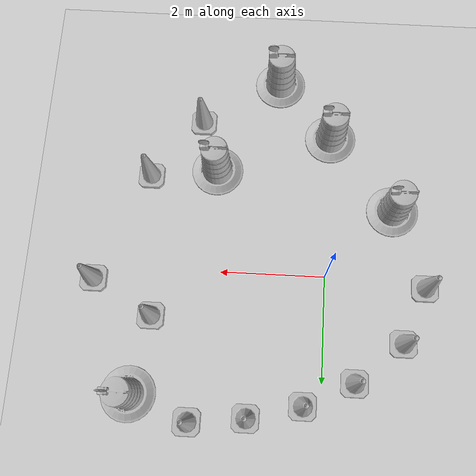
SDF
<sdf version="1.7">
 <world name="default">
  <light name="sun" type="directional">
   <pose>0 0 10 0 -0 0</pose>
   <diffuse>0.8 0.8 0.8 1</diffuse>
   <specular>0.2 0.2 0.2 1</specular>
   <attenuation>
    <range>1000</range>
    <constant>0.9</constant>
    <linear>0.01</linear>
    <quadratic>0.001</quadratic>
   </attenuation>
   <direction>-0.5 0.1 -0.9</direction>
   <spot><inner_angle>0</inner_angle><outer_angle>0</outer_angle><falloff>0</falloff></spot>
  </light>
  <model name="ground_plane">
   <static>1</static>
   <link name="link">
    <collision name="collision">
     <geometry><plane><normal>0 0 1</normal><size>100 100</size></plane></geometry>
     <surface><friction><ode><mu>100</mu><mu2>50</mu2></ode></friction></surface>
    </collision>
    <visual name="visual">
     <cast_shadows>0</cast_shadows>
     <geometry><plane><normal>0 0 1</normal><size>100 100</size></plane></geometry>
     <material>
      <script><uri>file://media/materials/scripts/gazebo.material</uri><name>Gazebo/Grey</name></script>
     </material>
    </visual>
   </link>
  </model>
  <gravity>0 0 -9.8</gravity>
  <magnetic_field>6e-06 2.3e-05 -4.2e-05</magnetic_field>
  <atmosphere type="adiabatic"/>
  <physics type="ode">
   <max_step_size>0.001</max_step_size>
   <real_time_factor>1</real_time_factor>
   <real_time_update_rate>1000</real_time_update_rate>
  </physics>
  <scene><ambient>0.4 0.4 0.4 1</ambient><background>0.7 0.7 0.7 1</background><shadows>1</shadows></scene>
  <audio><device>default</device></audio>
  <spherical_coordinates>
   <surface_model>EARTH_WGS84</surface_model>
   <latitude_deg>0</latitude_deg>
   <longitude_deg>0</longitude_deg>
   <elevation>0</elevation>
   <heading_deg>0</heading_deg>
  </spherical_coordinates>
  <model name="Construction Cone">
   <link name="link">
    <collision name="collision">
     <geometry>
      <mesh><scale>10 10 10</scale><uri>model://construction_cone/meshes/construction_cone.dae</uri></mesh>
     </geometry>
    </collision>
    <visual name="visual">
     <geometry>
      <mesh><scale>10 10 10</scale><uri>model://construction_cone/meshes/construction_cone.dae</uri></mesh>
     </geometry>
    </visual>
    <inertial>
     <inertia><ixx>1</ixx><ixy>0</ixy><ixz>0</ixz><iyy>1</iyy><iyz>0</iyz><izz>1</izz></inertia>
     <mass>1</mass>
    </inertial>
   </link>
   <pose>-0.598201 1.95775 -0 0 -1e-06 0</pose>
  </model>
  <model name="Construction Cone_0">
   <link name="link">
    <collision name="collision">
     <geometry>
      <mesh><scale>10 10 10</scale><uri>model://construction_cone/meshes/construction_cone.dae</uri></mesh>
     </geometry>
    </collision>
    <visual name="visual">
     <geometry>
      <mesh><scale>10 10 10</scale><uri>model://construction_cone/meshes/construction_cone.dae</uri></mesh>
     </geometry>
    </visual>
    <inertial>
     <inertia><ixx>1</ixx><ixy>0</ixy><ixz>0</ixz><iyy>1</iyy><iyz>0</iyz><izz>1</izz></inertia>
     <mass>1</mass>
    </inertial>
   </link>
   <pose>0.338828 2.41075 -0 0 -0 0</pose>
  </model>
  <model name="Construction Cone_1">
   <link name="link">
    <collision name="collision">
     <geometry>
      <mesh><scale>10 10 10</scale><uri>model://construction_cone/meshes/construction_cone.dae</uri></mesh>
     </geometry>
    </collision>
    <visual name="visual">
     <geometry>
      <mesh><scale>10 10 10</scale><uri>model://construction_cone/meshes/construction_cone.dae</uri></mesh>
     </geometry>
    </visual>
    <inertial>
     <inertia><ixx>1</ixx><ixy>0</ixy><ixz>0</ixz><iyy>1</iyy><iyz>0</iyz><izz>1</izz></inertia>
     <mass>1</mass>
    </inertial>
   </link>
   <pose>-1.50041 1.19523 -0 0 -1e-06 0</pose>
  </model>
  <model name="Construction Cone_2">
   <link name="link">
    <collision name="collision">
     <geometry>
      <mesh><scale>10 10 10</scale><uri>model://construction_cone/meshes/construction_cone.dae</uri></mesh>
     </geometry>
    </collision>
    <visual name="visual">
     <geometry>
      <mesh><scale>10 10 10</scale><uri>model://construction_cone/meshes/construction_cone.dae</uri></mesh>
     </geometry>
    </visual>
    <inertial>
     <inertia><ixx>1</ixx><ixy>0</ixy><ixz>0</ixz><iyy>1</iyy><iyz>0</iyz><izz>1</izz></inertia>
     <mass>1</mass>
    </inertial>
   </link>
   <pose>-1.92128 0.129513 -0 1e-06 -0 0</pose>
  </model>
  <model name="Construction Barrel">
   <link name="link">
    <inertial>
     <pose>0 0 0.4 0 -0 0</pose>
     <mass>500</mass>
     <inertia><ixx>51.2096</ixx><iyy>51.2096</iyy><izz>25</izz><ixy>0</ixy><ixz>0</ixz><iyz>0</iyz></inertia>
    </inertial>
    <collision name="collision">
     <geometry><mesh><uri>model://construction_barrel/meshes/construction_barrel.dae</uri></mesh></geometry>
    </collision>
    <visual name="visual">
     <geometry><mesh><uri>model://construction_barrel/meshes/construction_barrel.dae</uri></mesh></geometry>
    </visual>
   </link>
   <pose>-1.30532 -1.38538 -0 0 -0 -2e-05</pose>
  </model>
  <model name="Construction Barrel_0">
   <link name="link">
    <inertial>
     <pose>0 0 0.4 0 -0 0</pose>
     <mass>500</mass>
     <inertia><ixx>51.2096</ixx><iyy>51.2096</iyy><izz>25</izz><ixy>0</ixy><ixz>0</ixz><iyz>0</iyz></inertia>
    </inertial>
    <collision name="collision">
     <geometry><mesh><uri>model://construction_barrel/meshes/construction_barrel.dae</uri></mesh></geometry>
    </collision>
    <visual name="visual">
     <geometry><mesh><uri>model://construction_barrel/meshes/construction_barrel.dae</uri></mesh></geometry>
    </visual>
   </link>
   <pose>-0.050528 -2.86943 0 0 1e-06 -1.9e-05</pose>
  </model>
  <model name="Construction Barrel_1">
   <link name="link">
    <inertial>
     <pose>0 0 0.4 0 -0 0</pose>
     <mass>500</mass>
     <inertia><ixx>51.2096</ixx><iyy>51.2096</iyy><izz>25</izz><ixy>0</ixy><ixz>0</ixz><iyz>0</iyz></inertia>
    </inertial>
    <collision name="collision">
     <geometry><mesh><uri>model://construction_barrel/meshes/construction_barrel.dae</uri></mesh></geometry>
    </collision>
    <visual name="visual">
     <geometry><mesh><uri>model://construction_barrel/meshes/construction_barrel.dae</uri></mesh></geometry>
    </visual>
   </link>
   <pose>1.0123 -4.04089 -1e-06 -1e-06 -0 -1.8e-05</pose>
  </model>
  <model name="Construction Cone_3">
   <link name="link">
    <collision name="collision">
     <geometry>
      <mesh><scale>10 10 10</scale><uri>model://construction_cone/meshes/construction_cone.dae</uri></mesh>
     </geometry>
    </collision>
    <visual name="visual">
     <geometry>
      <mesh><scale>10 10 10</scale><uri>model://construction_cone/meshes/construction_cone.dae</uri></mesh>
     </geometry>
    </visual>
    <inertial>
     <inertia><ixx>1</ixx><ixy>0</ixy><ixz>0</ixz><iyy>1</iyy><iyz>0</iyz><izz>1</izz></inertia>
     <mass>1</mass>
    </inertial>
   </link>
   <pose>1.36357 2.66974 -0 0 -1e-06 0</pose>
  </model>
  <model name="Construction Cone_4">
   <link name="link">
    <collision name="collision">
     <geometry>
      <mesh><scale>10 10 10</scale><uri>model://construction_cone/meshes/construction_cone.dae</uri></mesh>
     </geometry>
    </collision>
    <visual name="visual">
     <geometry>
      <mesh><scale>10 10 10</scale><uri>model://construction_cone/meshes/construction_cone.dae</uri></mesh>
     </geometry>
    </visual>
    <inertial>
     <inertia><ixx>1</ixx><ixy>0</ixy><ixz>0</ixz><iyy>1</iyy><iyz>0</iyz><izz>1</izz></inertia>
     <mass>1</mass>
    </inertial>
   </link>
   <pose>2.42055 2.78492 -0 0 -1e-06 0</pose>
  </model>
  <model name="Construction Cone_5">
   <link name="link">
    <collision name="collision">
     <geometry>
      <mesh><scale>10 10 10</scale><uri>model://construction_cone/meshes/construction_cone.dae</uri></mesh>
     </geometry>
    </collision>
    <visual name="visual">
     <geometry>
      <mesh><scale>10 10 10</scale><uri>model://construction_cone/meshes/construction_cone.dae</uri></mesh>
     </geometry>
    </visual>
    <inertial>
     <inertia><ixx>1</ixx><ixy>0</ixy><ixz>0</ixz><iyy>1</iyy><iyz>0</iyz><izz>1</izz></inertia>
     <mass>1</mass>
    </inertial>
   </link>
   <pose>2.53627 -3.09604 0 -0 -0 -0</pose>
  </model>
  <model name="Construction Barrel_2">
   <link name="link">
    <inertial>
     <pose>0 0 0.4 0 -0 0</pose>
     <mass>500</mass>
     <inertia><ixx>51.2096</ixx><iyy>51.2096</iyy><izz>25</izz><ixy>0</ixy><ixz>0</ixz><iyz>0</iyz></inertia>
    </inertial>
    <collision name="collision">
     <geometry><mesh><uri>model://construction_barrel/meshes/construction_barrel.dae</uri></mesh></geometry>
    </collision>
    <visual name="visual">
     <geometry><mesh><uri>model://construction_barrel/meshes/construction_barrel.dae</uri></mesh></geometry>
    </visual>
   </link>
   <pose>2.1924 -2.06818 -0 0 0 -1e-05</pose>
  </model>
  <model name="Construction Barrel_3">
   <link name="link">
    <inertial>
     <pose>0 0 0.4 0 -0 0</pose>
     <mass>500</mass>
     <inertia><ixx>51.2096</ixx><iyy>51.2096</iyy><izz>25</izz><ixy>0</ixy><ixz>0</ixz><iyz>0</iyz></inertia>
    </inertial>
    <collision name="collision">
     <geometry><mesh><uri>model://construction_barrel/meshes/construction_barrel.dae</uri></mesh></geometry>
    </collision>
    <visual name="visual">
     <geometry><mesh><uri>model://construction_barrel/meshes/construction_barrel.dae</uri></mesh></geometry>
    </visual>
   </link>
   <pose>3.52966 2.34883 0 1e-06 1e-06 -9e-06</pose>
  </model>
  <model name="Construction Cone_6">
   <link name="link">
    <collision name="collision">
     <geometry>
      <mesh><scale>10 10 10</scale><uri>model://construction_cone/meshes/construction_cone.dae</uri></mesh>
     </geometry>
    </collision>
    <visual name="visual">
     <geometry>
      <mesh><scale>10 10 10</scale><uri>model://construction_cone/meshes/construction_cone.dae</uri></mesh>
     </geometry>
    </visual>
    <inertial>
     <inertia><ixx>1</ixx><ixy>0</ixy><ixz>0</ixz><iyy>1</iyy><iyz>0</iyz><izz>1</izz></inertia>
     <mass>1</mass>
    </inertial>
   </link>
   <pose>3.24932 0.903737 -0 0 -0 0</pose>
  </model>
  <model name="Construction Cone_7">
   <link name="link">
    <collision name="collision">
     <geometry>
      <mesh><scale>10 10 10</scale><uri>model://construction_cone/meshes/construction_cone.dae</uri></mesh>
     </geometry>
    </collision>
    <visual name="visual">
     <geometry>
      <mesh><scale>10 10 10</scale><uri>model://construction_cone/meshes/construction_cone.dae</uri></mesh>
     </geometry>
    </visual>
    <inertial>
     <inertia><ixx>1</ixx><ixy>0</ixy><ixz>0</ixz><iyy>1</iyy><iyz>0</iyz><izz>1</izz></inertia>
     <mass>1</mass>
    </inertial>
   </link>
   <pose>4.41082 0.241686 -0 0 -1e-06 0</pose>
  </model>
  <model name="Construction Cone_8">
   <link name="link">
    <collision name="collision">
     <geometry>
      <mesh><scale>10 10 10</scale><uri>model://construction_cone/meshes/construction_cone.dae</uri></mesh>
     </geometry>
    </collision>
    <visual name="visual">
     <geometry>
      <mesh><scale>10 10 10</scale><uri>model://construction_cone/meshes/construction_cone.dae</uri></mesh>
     </geometry>
    </visual>
    <inertial>
     <inertia><ixx>1</ixx><ixy>0</ixy><ixz>0</ixz><iyy>1</iyy><iyz>0</iyz><izz>1</izz></inertia>
     <mass>1</mass>
    </inertial>
   </link>
   <pose>3.49766 -1.88948 -0 0 -0 0</pose>
  </model>
 </world>
</sdf>
